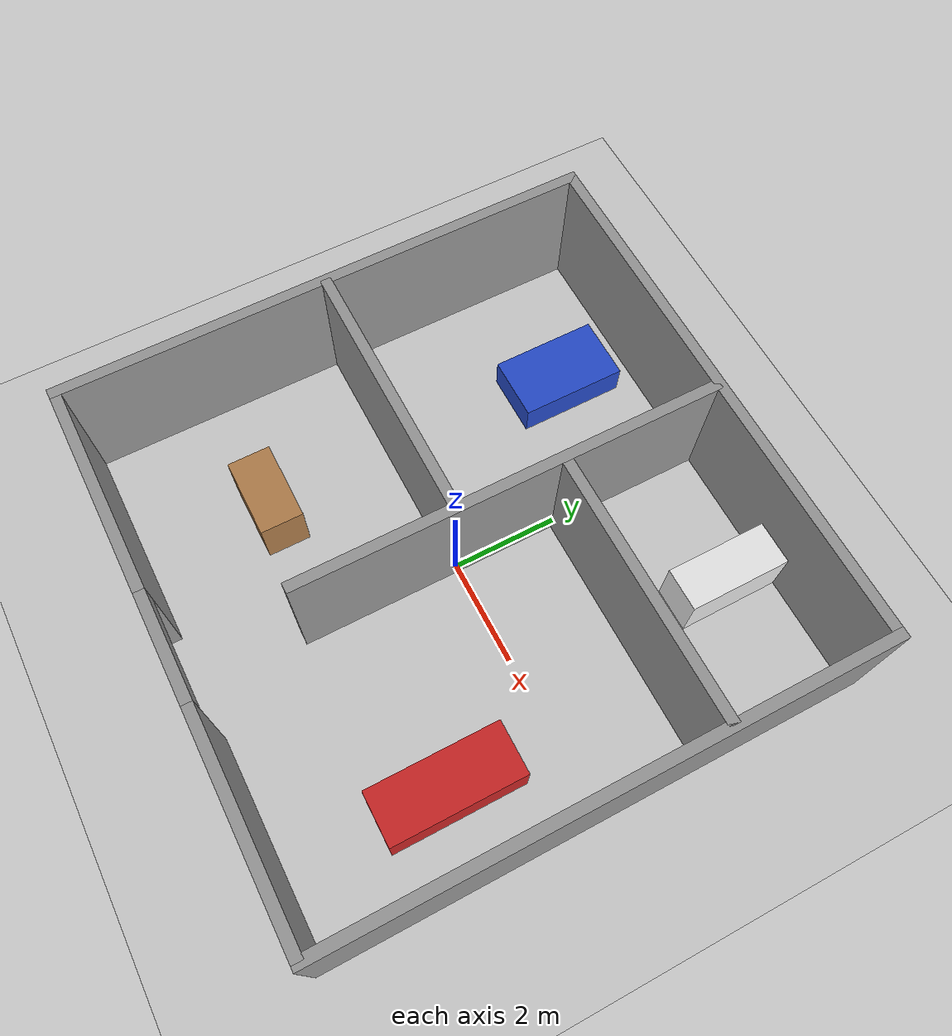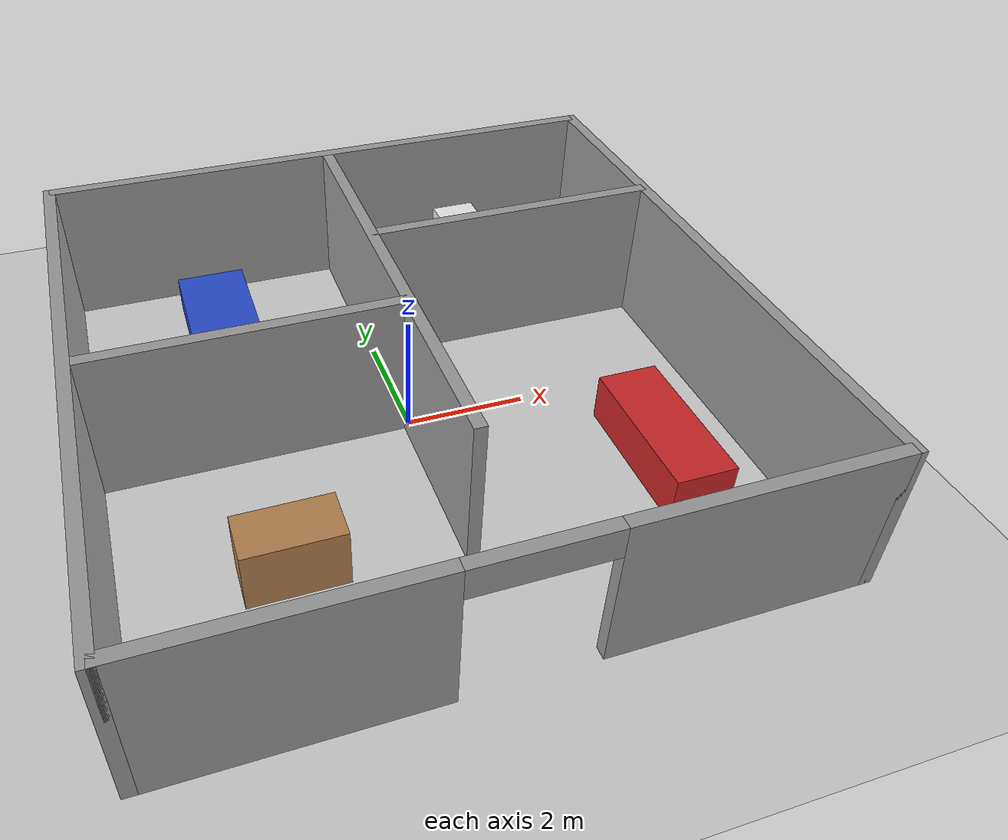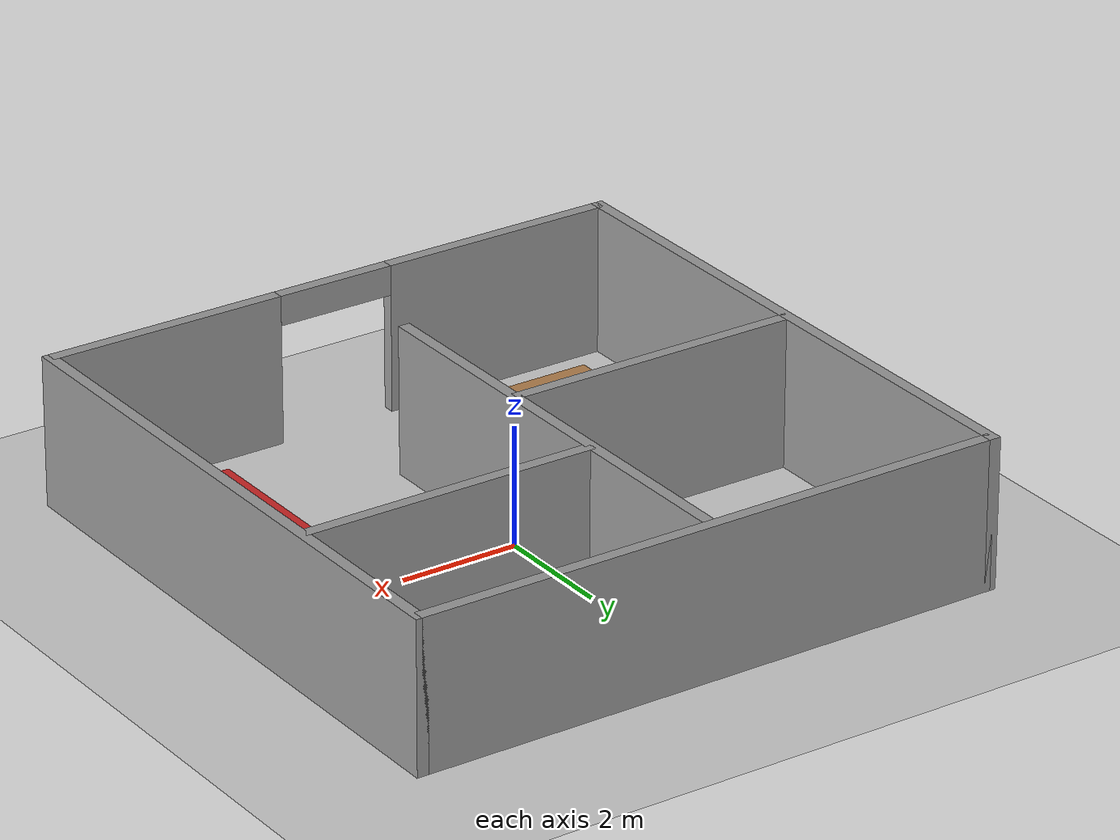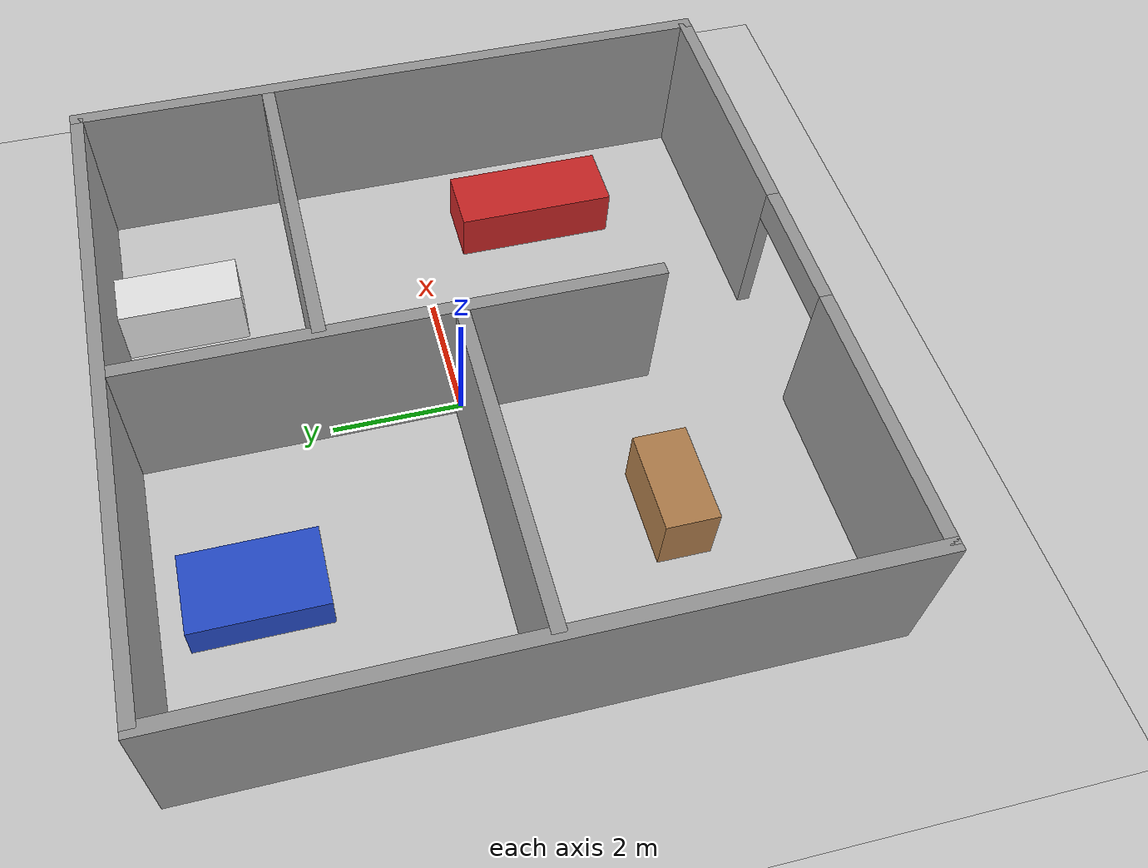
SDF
<?xml version="1.0" ?>
<sdf version="1.6">
  <world name="simple_indoor_house">
    <!-- Physics settings for stability -->
    <physics type="ode">
      <max_step_size>0.001</max_step_size>
      <real_time_factor>1</real_time_factor>
      <real_time_update_rate>1000</real_time_update_rate>
    </physics>

    <!-- Light Source -->
    <include>
      <uri>model://sun</uri>
    </include>

    <!-- Ground Plane -->
    <include>
      <uri>model://ground_plane</uri>
    </include>

    <!-- House Structure (Walls) -->
    <model name="house_walls">
      <static>true</static>
      <link name="wall_link">

        <!-- Wall 1: Back Wall (10m long) -->
        <visual name="wall_1_visual">
          <pose>0 5 1.25 0 0 0</pose>
          <geometry><box><size>10 0.2 2.5</size></box></geometry>
          <material><script><uri>file://media/materials/scripts/gazebo.material</uri><name>Gazebo/Grey</name></script></material>
        </visual>
        <collision name="wall_1_collision">
          <pose>0 5 1.25 0 0 0</pose>
          <geometry><box><size>10 0.2 2.5</size></box></geometry>
        </collision>

        <!-- Wall 2: Front Wall (with door gap) -->
        <!-- Left segment -->
        <visual name="wall_2a_visual">
          <pose>-3 -5 1.25 0 0 0</pose>
          <geometry><box><size>4 0.2 2.5</size></box></geometry>
          <material><script><uri>file://media/materials/scripts/gazebo.material</uri><name>Gazebo/Grey</name></script></material>
        </visual>
        <collision name="wall_2a_collision">
          <pose>-3 -5 1.25 0 0 0</pose>
          <geometry><box><size>4 0.2 2.5</size></box></geometry>
        </collision>
        <!-- Right segment -->
        <visual name="wall_2b_visual">
          <pose>3 -5 1.25 0 0 0</pose>
          <geometry><box><size>4 0.2 2.5</size></box></geometry>
          <material><script><uri>file://media/materials/scripts/gazebo.material</uri><name>Gazebo/Grey</name></script></material>
        </visual>
        <collision name="wall_2b_collision">
          <pose>3 -5 1.25 0 0 0</pose>
          <geometry><box><size>4 0.2 2.5</size></box></geometry>
        </collision>
        <!-- Door lintel -->
        <visual name="wall_2c_visual">
          <pose>0 -5 2.25 0 0 0</pose>
          <geometry><box><size>2 0.2 0.5</size></box></geometry>
          <material><script><uri>file://media/materials/scripts/gazebo.material</uri><name>Gazebo/Grey</name></script></material>
        </visual>
        <collision name="wall_2c_collision">
          <pose>0 -5 2.25 0 0 0</pose>
          <geometry><box><size>2 0.2 0.5</size></box></geometry>
        </collision>

        <!-- Wall 3: Left Wall -->
        <visual name="wall_3_visual">
          <pose>-5 0 1.25 0 0 0</pose>
          <geometry><box><size>0.2 10.2 2.5</size></box></geometry>
          <material><script><uri>file://media/materials/scripts/gazebo.material</uri><name>Gazebo/Grey</name></script></material>
        </visual>
        <collision name="wall_3_collision">
          <pose>-5 0 1.25 0 0 0</pose>
          <geometry><box><size>0.2 10.2 2.5</size></box></geometry>
        </collision>

        <!-- Wall 4: Right Wall -->
        <visual name="wall_4_visual">
          <pose>5 0 1.25 0 0 0</pose>
          <geometry><box><size>0.2 10.2 2.5</size></box></geometry>
          <material><script><uri>file://media/materials/scripts/gazebo.material</uri><name>Gazebo/Grey</name></script></material>
        </visual>
        <collision name="wall_4_collision">
          <pose>5 0 1.25 0 0 0</pose>
          <geometry><box><size>0.2 10.2 2.5</size></box></geometry>
        </collision>

        <!-- Interior Wall 1: Dividing Left and Right halves (partial) -->
        <visual name="int_wall_1_visual">
          <pose>0 1 1.25 0 0 0</pose>
          <geometry><box><size>0.2 8 2.5</size></box></geometry>
          <material><script><uri>file://media/materials/scripts/gazebo.material</uri><name>Gazebo/Grey</name></script></material>
        </visual>
        <collision name="int_wall_1_collision">
          <pose>0 1 1.25 0 0 0</pose>
          <geometry><box><size>0.2 8 2.5</size></box></geometry>
        </collision>

        <!-- Interior Wall 2: Horizontal divider for top left room -->
        <visual name="int_wall_2_visual">
          <pose>-2.5 0 1.25 0 0 0</pose>
          <geometry><box><size>5 0.2 2.5</size></box></geometry>
          <material><script><uri>file://media/materials/scripts/gazebo.material</uri><name>Gazebo/Grey</name></script></material>
        </visual>
        <collision name="int_wall_2_collision">
          <pose>-2.5 0 1.25 0 0 0</pose>
          <geometry><box><size>5 0.2 2.5</size></box></geometry>
        </collision>

        <!-- Interior Wall 3: Horizontal divider for top right room -->
        <visual name="int_wall_3_visual">
          <pose>2.5 2 1.25 0 0 0</pose>
          <geometry><box><size>5 0.2 2.5</size></box></geometry>
          <material><script><uri>file://media/materials/scripts/gazebo.material</uri><name>Gazebo/Grey</name></script></material>
        </visual>
        <collision name="int_wall_3_collision">
          <pose>2.5 2 1.25 0 0 0</pose>
          <geometry><box><size>5 0.2 2.5</size></box></geometry>
        </collision>
      </link>
    </model>

    <!-- Furniture Placeholders -->
    <!-- Table in Room 1 (Bottom Left) -->
    <model name="table">
      <static>true</static>
      <pose>-2.5 -2.5 0.5 0 0 0</pose>
      <link name="link">
        <visual name="visual">
          <geometry><box><size>1.5 0.8 1.0</size></box></geometry>
          <material><script><uri>file://media/materials/scripts/gazebo.material</uri><name>Gazebo/Wood</name></script></material>
        </visual>
        <collision name="collision">
          <geometry><box><size>1.5 0.8 1.0</size></box></geometry>
        </collision>
      </link>
    </model>

    <!-- Bed in Room 2 (Top Left) -->
    <model name="bed">
      <static>true</static>
      <pose>-2.5 3.5 0.3 0 0 0</pose>
      <link name="link">
        <visual name="visual">
          <geometry><box><size>1.2 2.0 0.6</size></box></geometry>
          <material><script><uri>file://media/materials/scripts/gazebo.material</uri><name>Gazebo/Blue</name></script></material>
        </visual>
        <collision name="collision">
          <geometry><box><size>1.2 2.0 0.6</size></box></geometry>
        </collision>
      </link>
    </model>

    <!-- Counter in Room 3 (Top Right) -->
    <model name="counter">
      <static>true</static>
      <pose>2.5 4 0.5 0 0 0</pose>
      <link name="link">
        <visual name="visual">
          <geometry><box><size>0.8 2.0 1.0</size></box></geometry>
          <material><script><uri>file://media/materials/scripts/gazebo.material</uri><name>Gazebo/White</name></script></material>
        </visual>
        <collision name="collision">
          <geometry><box><size>0.8 2.0 1.0</size></box></geometry>
        </collision>
      </link>
    </model>

    <!-- Sofa in Room 4 (Bottom Right) -->
    <model name="sofa">
      <static>true</static>
      <pose>3.5 -2 0.4 0 0 0</pose>
      <link name="link">
        <visual name="visual">
          <geometry><box><size>1.0 2.5 0.8</size></box></geometry>
          <material><script><uri>file://media/materials/scripts/gazebo.material</uri><name>Gazebo/Red</name></script></material>
        </visual>
        <collision name="collision">
          <geometry><box><size>1.0 2.5 0.8</size></box></geometry>
        </collision>
      </link>
    </model>

  </world>
</sdf>
